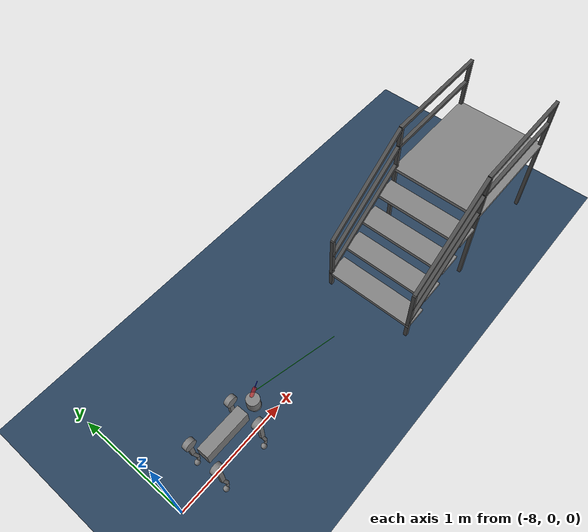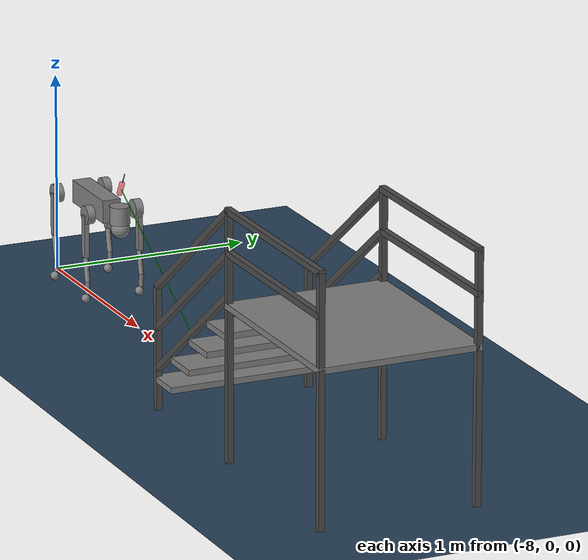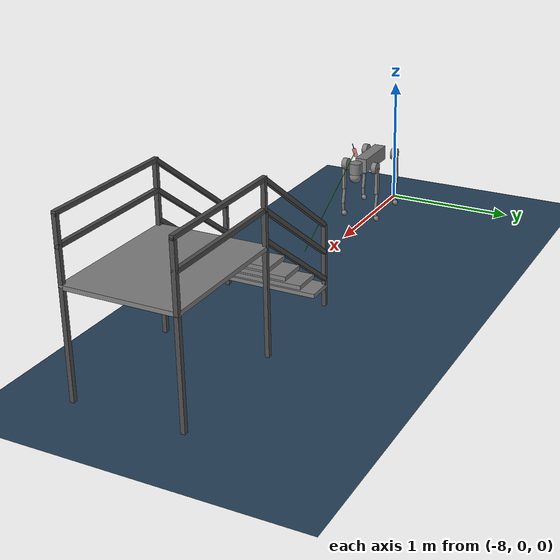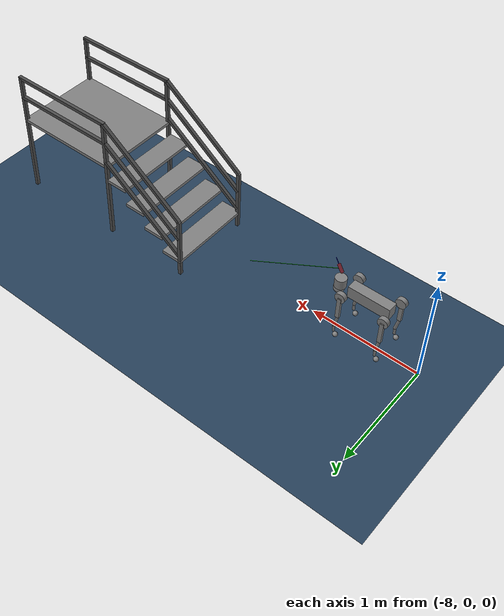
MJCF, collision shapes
<mujoco model="go2 scene">
  <include file="go2.xml" />

  <statistic center="0 0 0.1" extent="0.8" />

  <visual>
    <headlight diffuse="0.6 0.6 0.6" ambient="0.3 0.3 0.3" specular="0 0 0" />
    <rgba haze="0.15 0.25 0.35 1" />
    <global azimuth="-130" elevation="-20" />
  </visual>

  <asset>
    <texture type="skybox" builtin="gradient" rgb1="0.3 0.5 0.7" rgb2="0 0 0" width="512" height="3072" />
    <texture type="2d" name="groundplane" builtin="checker" mark="edge" rgb1="0.2 0.3 0.4" rgb2="0.1 0.2 0.3" markrgb="0.8 0.8 0.8" width="300" height="300" />
    <material name="groundplane" texture="groundplane" texuniform="true" texrepeat="5 5" reflectance="0.2" />
  </asset>

  <default>
    <default class="rail">
      <geom type="box" rgba="0.3 0.3 0.3 1"/>

      <default class="post_short">
        <geom size="0.015 0.015 0.3"/>
      </default>

      <default class="post_tall">
        <geom size="0.015 0.015 0.6"/>
      </default>

      <default class="bar_sloped">
        <geom size="0.015 0.015 0.5" euler="0 0.9273 0"/>
      </default>

      <default class="bar_flat">
         <geom size="0.5 0.015 0.015"/>
      </default>
    </default>

    <default class="step_std">
        <geom type="box" size="0.1 0.4 0.015"/>
    </default>
    <default class="step_platform">
        <geom type="box" size="0.5 0.4 0.015"/>
    </default>
  </default>

  <worldbody>
    <light pos="0 0 1.5" dir="0 0 -1" directional="true" />
    <geom name="floor" size="0 0 0.05" type="plane" material="groundplane" />

    <geom class="step_std" pos="-5.8 0.0 0.15"/>
    <geom class="step_std" pos="-5.6 0.0 0.30"/>
    <geom class="step_std" pos="-5.4 0.0 0.45"/>
    <geom class="step_std" pos="-5.2 0.0 0.60"/>
    <geom class="step_platform" pos="-4.6 0.0 0.75"/>

    <geom class="post_short" pos="-5.885 0.385 0.3"/>
    <geom class="post_short" pos="-5.885 -0.385 0.3"/>

    <geom class="post_tall" pos="-5.085 0.385 0.6"/>
    <geom class="post_tall" pos="-5.085 -0.385 0.6"/>

    <geom class="post_tall" pos="-4.115 0.385 0.6"/>
    <geom class="post_tall" pos="-4.115 -0.385 0.6"/>

    <geom class="bar_sloped" pos="-5.485 0.385 0.5"/>
    <geom class="bar_sloped" pos="-5.485 0.385 0.7"/>
    <geom class="bar_sloped" pos="-5.485 0.385 0.9"/>

    <geom class="bar_sloped" pos="-5.485 -0.385 0.5"/>
    <geom class="bar_sloped" pos="-5.485 -0.385 0.7"/>
    <geom class="bar_sloped" pos="-5.485 -0.385 0.9"/>

    <geom class="bar_flat" pos="-4.6 0.385 1.0"/>
    <geom class="bar_flat" pos="-4.6 0.385 1.2"/>

    <geom class="bar_flat" pos="-4.6 -0.385 1.0"/>
    <geom class="bar_flat" pos="-4.6 -0.385 1.2"/>

  </worldbody>
</mujoco>

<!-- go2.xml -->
<mujoco model="go2">
  <compiler angle="radian" meshdir="assets" autolimits="true" />

  <option cone="elliptic" impratio="100" />

  <default>
    <default class="go2">
      <geom friction="0.4" margin="0.001" condim="1"/>
      <joint axis="0 1 0" damping="0.1" armature="0.01" frictionloss="0.2"/>
      <motor ctrlrange="-23.7 23.7"/>
      <default class="abduction">
        <joint axis="1 0 0" range="-1.0472 1.0472"/>
      </default>
      <default class="hip">
        <default class="front_hip">
          <joint range="-1.5708 3.4907"/>
        </default>
        <default class="back_hip">
          <joint range="-0.5236 4.5379"/>
        </default>
      </default>
      <default class="knee">
        <joint range="-2.7227 -0.83776"/>
        <motor ctrlrange="-45.43 45.43"/>
      </default>
      <default class="visual">
        <geom type="mesh" contype="0" conaffinity="0" group="2"/>
      </default>
      <default class="collision">
        <geom group="3"/>
        <default class="foot">
          <geom size="0.022" pos="-0.002 0 -0.213" priority="1" condim="6"
            friction="0.4 0.02 0.01"/>
        </default>
      </default>
    </default>
  </default>

  <asset>
    <material name="metal" rgba=".9 .95 .95 1" />
    <material name="black" rgba="0 0 0 1" />
    <material name="white" rgba="1 1 1 1" />
    <material name="gray" rgba="0.671705 0.692426 0.774270 1" />

    <mesh file="base_0.obj" />
    <mesh file="base_1.obj" />
    <mesh file="base_2.obj" />
    <mesh file="base_3.obj" />
    <mesh file="base_4.obj" />
    <mesh file="hip_0.obj" />
    <mesh file="hip_1.obj" />
    <mesh file="thigh_0.obj" />
    <mesh file="thigh_1.obj" />
    <mesh file="thigh_mirror_0.obj" />
    <mesh file="thigh_mirror_1.obj" />
    <mesh file="calf_0.obj" />
    <mesh file="calf_1.obj" />
    <mesh file="calf_mirror_0.obj" />
    <mesh file="calf_mirror_1.obj" />
    <mesh file="foot.obj" />
  </asset>

  <worldbody>
    <body name="base_link" pos="-7.5 0 0.5" childclass="go2">
    <camera name="d435i_camera" pos="0.3 0 0.147" quat="0.6124 0.3536 -0.3536 -0.6124"/>
    <!-- Debug Camera Visualization Matches Camera Pose -->
    <body name="debug_camera_viz" pos="0.3 0 0.147" quat="0.6124 0.3536 -0.3536 -0.6124">
        <!-- Camera Body (Red Box) -->
        <geom type="box" size="0.01 0.04 0.01" rgba="1 0 0 0.5" contype="0" conaffinity="0" group="1"/>
        <!-- Ray Direction (Green Line) pointing along -Z (Optical Axis) -->
        <geom type="cylinder" fromto="0 0 0 0 0 -1.0" size="0.002" rgba="0 1 0 0.8" contype="0" conaffinity="0" group="1"/>
        <!-- Up Direction (Blue Line) pointing along +Y -->
        <geom type="cylinder" fromto="0 0 0 0 0.1 0" size="0.002" rgba="0 0 1 0.8" contype="0" conaffinity="0" group="1"/>
    </body>
      <inertial pos="0.021112 0 -0.005366" quat="-0.000543471 0.713435 -0.00173769 0.700719"
        mass="6.921"
        diaginertia="0.107027 0.0980771 0.0244531" />
      <freejoint />
      <geom mesh="base_0" material="black" class="visual" />
      <geom mesh="base_1" material="black" class="visual" />
      <geom mesh="base_2" material="black" class="visual" />
      <geom mesh="base_3" material="white" class="visual" />
      <geom mesh="base_4" material="gray" class="visual" />
      <geom size="0.1881 0.04675 0.057" type="box" class="collision" />
      <geom size="0.05 0.045" pos="0.285 0 0.01" type="cylinder" class="collision" />
      <geom size="0.047" pos="0.293 0 -0.06" class="collision" />
      <site name="imu" pos="-0.02557 0 0.04232" />
      <body name="FL_hip" pos="0.1934 0.0465 0">
        <inertial pos="-0.0054 0.00194 -0.000105" quat="0.497014 0.499245 0.505462 0.498237"
          mass="0.678"
          diaginertia="0.00088403 0.000596003 0.000479967" />
        <joint name="FL_hip_joint" class="abduction" />
        <geom mesh="hip_0" material="metal" class="visual" />
        <geom mesh="hip_1" material="gray" class="visual" />
        <geom size="0.046 0.02" pos="0 0.08 0" quat="1 1 0 0" type="cylinder" class="collision" />
        <body name="FL_thigh" pos="0 0.0955 0">
          <inertial pos="-0.00374 -0.0223 -0.0327" quat="0.829533 0.0847635 -0.0200632 0.551623"
            mass="1.152"
            diaginertia="0.00594973 0.00584149 0.000878787" />
          <joint name="FL_thigh_joint" class="front_hip" />
          <geom mesh="thigh_0" material="metal" class="visual" />
          <geom mesh="thigh_1" material="gray" class="visual" />
          <geom size="0.1065 0.01225 0.017" pos="0 0 -0.1065" quat="0.707107 0 0.707107 0"
            type="box" class="collision" />
          <body name="FL_calf" pos="0 0 -0.213">
            <inertial pos="0.00629595 -0.000622121 -0.141417"
              quat="0.710672 0.00154099 -0.00450087 0.703508"
              mass="0.241352" diaginertia="0.0014901 0.00146356 5.31397e-05" />
            <joint name="FL_calf_joint" class="knee" />
            <geom mesh="calf_0" material="gray" class="visual" />
            <geom mesh="calf_1" material="black" class="visual" />
            <geom size="0.012 0.06" pos="0.008 0 -0.06" quat="0.994493 0 -0.104807 0"
              type="cylinder" class="collision" />
            <geom size="0.011 0.0325" pos="0.02 0 -0.148" quat="0.999688 0 0.0249974 0"
              type="cylinder" class="collision" />
            <geom pos="0 0 -0.213" mesh="foot" class="visual" material="black" />
            <geom name="FL" class="foot" />
            <body name="FL_foot" pos="0 0 -0.213" />
          </body>
        </body>
      </body>
      <body name="FR_hip" pos="0.1934 -0.0465 0">
        <inertial pos="-0.0054 -0.00194 -0.000105" quat="0.498237 0.505462 0.499245 0.497014"
          mass="0.678"
          diaginertia="0.00088403 0.000596003 0.000479967" />
        <joint name="FR_hip_joint" class="abduction" />
        <geom mesh="hip_0" material="metal" class="visual" quat="4.63268e-05 1 0 0" />
        <geom mesh="hip_1" material="gray" class="visual" quat="4.63268e-05 1 0 0" />
        <geom size="0.046 0.02" pos="0 -0.08 0" quat="0.707107 0.707107 0 0" type="cylinder"
          class="collision" />
        <body name="FR_thigh" pos="0 -0.0955 0">
          <inertial pos="-0.00374 0.0223 -0.0327" quat="0.551623 -0.0200632 0.0847635 0.829533"
            mass="1.152"
            diaginertia="0.00594973 0.00584149 0.000878787" />
          <joint name="FR_thigh_joint" class="front_hip" />
          <geom mesh="thigh_mirror_0" material="metal" class="visual" />
          <geom mesh="thigh_mirror_1" material="gray" class="visual" />
          <geom size="0.1065 0.01225 0.017" pos="0 0 -0.1065" quat="0.707107 0 0.707107 0"
            type="box" class="collision" />
          <body name="FR_calf" pos="0 0 -0.213">
            <inertial pos="0.00629595 0.000622121 -0.141417"
              quat="0.703508 -0.00450087 0.00154099 0.710672"
              mass="0.241352" diaginertia="0.0014901 0.00146356 5.31397e-05" />
            <joint name="FR_calf_joint" class="knee" />
            <geom mesh="calf_mirror_0" material="gray" class="visual" />
            <geom mesh="calf_mirror_1" material="black" class="visual" />
            <geom size="0.013 0.06" pos="0.01 0 -0.06" quat="0.995004 0 -0.0998334 0"
              type="cylinder" class="collision" />
            <geom size="0.011 0.0325" pos="0.02 0 -0.148" quat="0.999688 0 0.0249974 0"
              type="cylinder" class="collision" />
            <geom pos="0 0 -0.213" mesh="foot" class="visual" material="black" />
            <geom name="FR" class="foot" />
            <body name="FR_foot" pos="0 0 -0.213" />
          </body>
        </body>
      </body>
      <body name="RL_hip" pos="-0.1934 0.0465 0">
        <inertial pos="0.0054 0.00194 -0.000105" quat="0.505462 0.498237 0.497014 0.499245"
          mass="0.678"
          diaginertia="0.00088403 0.000596003 0.000479967" />
        <joint name="RL_hip_joint" class="abduction" />
        <geom mesh="hip_0" material="metal" class="visual" quat="4.63268e-05 0 1 0" />
        <geom mesh="hip_1" material="gray" class="visual" quat="4.63268e-05 0 1 0" />
        <geom size="0.046 0.02" pos="0 0.08 0" quat="0.707107 0.707107 0 0" type="cylinder"
          class="collision" />
        <body name="RL_thigh" pos="0 0.0955 0">
          <inertial pos="-0.00374 -0.0223 -0.0327" quat="0.829533 0.0847635 -0.0200632 0.551623"
            mass="1.152"
            diaginertia="0.00594973 0.00584149 0.000878787" />
          <joint name="RL_thigh_joint" class="back_hip" />
          <geom mesh="thigh_0" material="metal" class="visual" />
          <geom mesh="thigh_1" material="gray" class="visual" />
          <geom size="0.1065 0.01225 0.017" pos="0 0 -0.1065" quat="0.707107 0 0.707107 0"
            type="box" class="collision" />
          <body name="RL_calf" pos="0 0 -0.213">
            <inertial pos="0.00629595 -0.000622121 -0.141417"
              quat="0.710672 0.00154099 -0.00450087 0.703508"
              mass="0.241352" diaginertia="0.0014901 0.00146356 5.31397e-05" />
            <joint name="RL_calf_joint" class="knee" />
            <geom mesh="calf_0" material="gray" class="visual" />
            <geom mesh="calf_1" material="black" class="visual" />
            <geom size="0.013 0.06" pos="0.01 0 -0.06" quat="0.995004 0 -0.0998334 0"
              type="cylinder" class="collision" />
            <geom size="0.011 0.0325" pos="0.02 0 -0.148" quat="0.999688 0 0.0249974 0"
              type="cylinder" class="collision" />
            <geom pos="0 0 -0.213" mesh="foot" class="visual" material="black" />
            <geom name="RL" class="foot" />
            <body name="RL_foot" pos="0 0 -0.213" />
          </body>
        </body>
      </body>
      <body name="RR_hip" pos="-0.1934 -0.0465 0">
        <inertial pos="0.0054 -0.00194 -0.000105" quat="0.499245 0.497014 0.498237 0.505462"
          mass="0.678"
          diaginertia="0.00088403 0.000596003 0.000479967" />
        <joint name="RR_hip_joint" class="abduction" />
        <geom mesh="hip_0" material="metal" class="visual"
          quat="2.14617e-09 4.63268e-05 4.63268e-05 -1" />
        <geom mesh="hip_1" material="gray" class="visual"
          quat="2.14617e-09 4.63268e-05 4.63268e-05 -1" />
        <geom size="0.046 0.02" pos="0 -0.08 0" quat="0.707107 0.707107 0 0" type="cylinder"
          class="collision" />
        <body name="RR_thigh" pos="0 -0.0955 0">
          <inertial pos="-0.00374 0.0223 -0.0327" quat="0.551623 -0.0200632 0.0847635 0.829533"
            mass="1.152"
            diaginertia="0.00594973 0.00584149 0.000878787" />
          <joint name="RR_thigh_joint" class="back_hip" />
          <geom mesh="thigh_mirror_0" material="metal" class="visual" />
          <geom mesh="thigh_mirror_1" material="gray" class="visual" />
          <geom size="0.1065 0.01225 0.017" pos="0 0 -0.1065" quat="0.707107 0 0.707107 0"
            type="box" class="collision" />
          <body name="RR_calf" pos="0 0 -0.213">
            <inertial pos="0.00629595 0.000622121 -0.141417"
              quat="0.703508 -0.00450087 0.00154099 0.710672"
              mass="0.241352" diaginertia="0.0014901 0.00146356 5.31397e-05" />
            <joint name="RR_calf_joint" class="knee" />
            <geom mesh="calf_mirror_0" material="gray" class="visual" />
            <geom mesh="calf_mirror_1" material="black" class="visual" />
            <geom size="0.013 0.06" pos="0.01 0 -0.06" quat="0.995004 0 -0.0998334 0"
              type="cylinder" class="collision" />
            <geom size="0.011 0.0325" pos="0.02 0 -0.148" quat="0.999688 0 0.0249974 0"
              type="cylinder" class="collision" />
            <geom pos="0 0 -0.213" mesh="foot" class="visual" material="black" />
            <geom name="RR" class="foot" />
            <body name="RR_foot" pos="0 0 -0.213" />
          </body>
        </body>
      </body>
    </body>
  </worldbody>

  <actuator>
    <motor class="abduction" name="FR_hip" joint="FR_hip_joint" />
    <motor class="hip" name="FR_thigh" joint="FR_thigh_joint" />
    <motor class="knee" name="FR_calf" joint="FR_calf_joint" />
    <motor class="abduction" name="FL_hip" joint="FL_hip_joint" />
    <motor class="hip" name="FL_thigh" joint="FL_thigh_joint" />
    <motor class="knee" name="FL_calf" joint="FL_calf_joint" />
    <motor class="abduction" name="RR_hip" joint="RR_hip_joint" />
    <motor class="hip" name="RR_thigh" joint="RR_thigh_joint" />
    <motor class="knee" name="RR_calf" joint="RR_calf_joint" />
    <motor class="abduction" name="RL_hip" joint="RL_hip_joint" />
    <motor class="hip" name="RL_thigh" joint="RL_thigh_joint" />
    <motor class="knee" name="RL_calf" joint="RL_calf_joint" />
  </actuator>

  <sensor>
    <jointpos name="FR_hip_pos" joint="FR_hip_joint" />
    <jointpos name="FR_thigh_pos" joint="FR_thigh_joint" />
    <jointpos name="FR_calf_pos" joint="FR_calf_joint" />
    <jointpos name="FL_hip_pos" joint="FL_hip_joint" />
    <jointpos name="FL_thigh_pos" joint="FL_thigh_joint" />
    <jointpos name="FL_calf_pos" joint="FL_calf_joint" />
    <jointpos name="RR_hip_pos" joint="RR_hip_joint" />
    <jointpos name="RR_thigh_pos" joint="RR_thigh_joint" />
    <jointpos name="RR_calf_pos" joint="RR_calf_joint" />
    <jointpos name="RL_hip_pos" joint="RL_hip_joint" />
    <jointpos name="RL_thigh_pos" joint="RL_thigh_joint" />
    <jointpos name="RL_calf_pos" joint="RL_calf_joint" />

    <jointvel name="FR_hip_vel" joint="FR_hip_joint" />
    <jointvel name="FR_thigh_vel" joint="FR_thigh_joint" />
    <jointvel name="FR_calf_vel" joint="FR_calf_joint" />
    <jointvel name="FL_hip_vel" joint="FL_hip_joint" />
    <jointvel name="FL_thigh_vel" joint="FL_thigh_joint" />
    <jointvel name="FL_calf_vel" joint="FL_calf_joint" />
    <jointvel name="RR_hip_vel" joint="RR_hip_joint" />
    <jointvel name="RR_thigh_vel" joint="RR_thigh_joint" />
    <jointvel name="RR_calf_vel" joint="RR_calf_joint" />
    <jointvel name="RL_hip_vel" joint="RL_hip_joint" />
    <jointvel name="RL_thigh_vel" joint="RL_thigh_joint" />
    <jointvel name="RL_calf_vel" joint="RL_calf_joint" />

    <jointactuatorfrc name="FR_hip_torque" joint="FR_hip_joint" noise="0.01" />
    <jointactuatorfrc name="FR_thigh_torque" joint="FR_thigh_joint" noise="0.01" />
    <jointactuatorfrc name="FR_calf_torque" joint="FR_calf_joint" noise="0.01" />
    <jointactuatorfrc name="FL_hip_torque" joint="FL_hip_joint" noise="0.01" />
    <jointactuatorfrc name="FL_thigh_torque" joint="FL_thigh_joint" noise="0.01" />
    <jointactuatorfrc name="FL_calf_torque" joint="FL_calf_joint" noise="0.01" />
    <jointactuatorfrc name="RR_hip_torque" joint="RR_hip_joint" noise="0.01" />
    <jointactuatorfrc name="RR_thigh_torque" joint="RR_thigh_joint" noise="0.01" />
    <jointactuatorfrc name="RR_calf_torque" joint="RR_calf_joint" noise="0.01" />
    <jointactuatorfrc name="RL_hip_torque" joint="RL_hip_joint" noise="0.01" />
    <jointactuatorfrc name="RL_thigh_torque" joint="RL_thigh_joint" noise="0.01" />
    <jointactuatorfrc name="RL_calf_torque" joint="RL_calf_joint" noise="0.01" />

    <framequat name="imu_quat" objtype="site" objname="imu" />
    <gyro name="imu_gyro" site="imu" />
    <accelerometer name="imu_acc" site="imu" />

    <framepos name="frame_pos" objtype="site" objname="imu" />
    <framelinvel name="frame_vel" objtype="site" objname="imu" />
  </sensor>

  <keyframe>
    <key name="home" qpos="0 0 0.27 1 0 0 0 0 0.9 -1.8 0 0.9 -1.8 0 0.9 -1.8 0 0.9 -1.8"
      ctrl="0 0.9 -1.8 0 0.9 -1.8 0 0.9 -1.8 0 0.9 -1.8" />
  </keyframe>
</mujoco>
